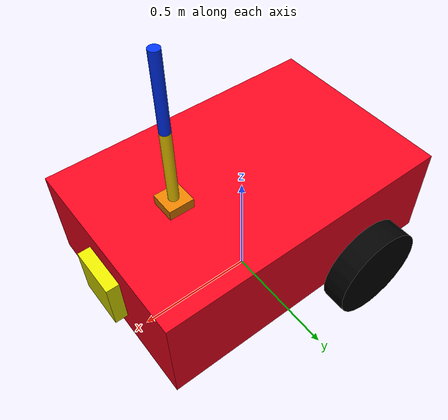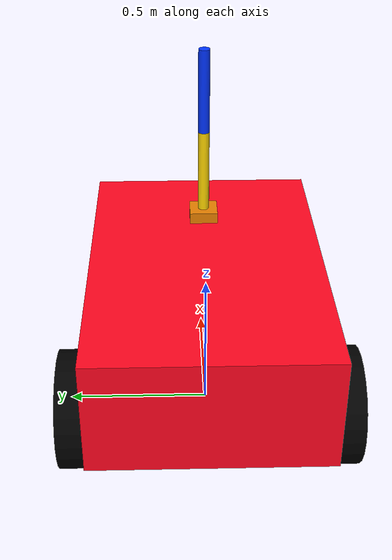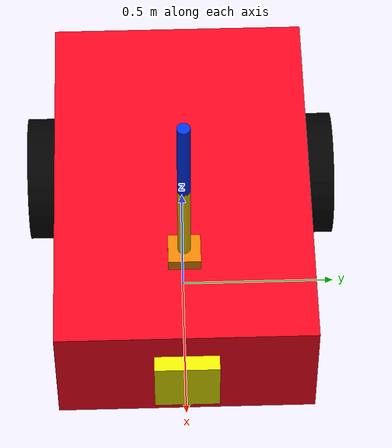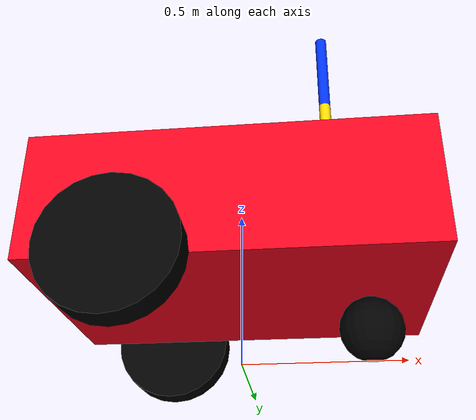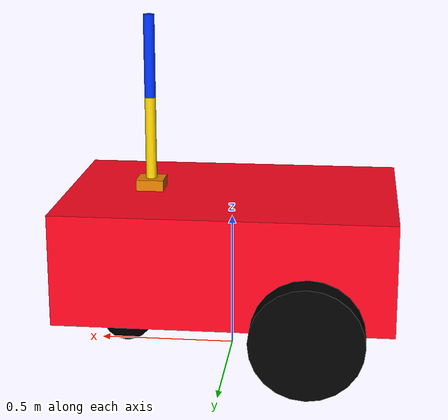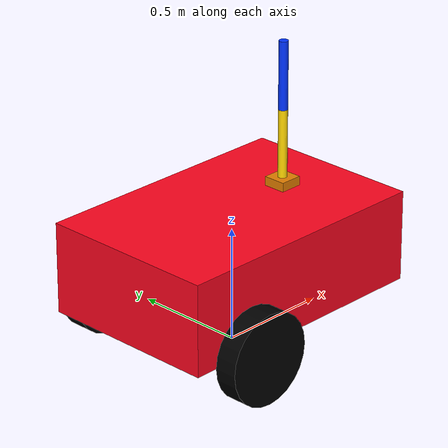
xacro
<?xml version="1.0"?>
<robot name="Red_Cherry_Bot" xmlns:xacro="http://www.ros.org/wiki/xacro">

<xacro:include filename="common_properties.xacro"/>
<xacro:include filename="mobile_base.xacro"/>
<xacro:include filename="mobile_base_gazebo.xacro"/>
<xacro:include filename="camera.xacro"/>
<xacro:include filename="arm.xacro"/>
<xacro:include filename="arm_gazebo.xacro"/>

</robot>

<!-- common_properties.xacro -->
<robot xmlns:xacro="http://www.ros.org/wiki/xacro">

    <!-- Gazebo-friendly material palette -->
    <material name="base_cherry_red">
        <color rgba="1.0 0.02 0.12 1.0" />
    </material>

    <material name="wheel_black">
        <color rgba="0.0 0.0 0.0 1.0"/>
    </material>

    <material name="camera_yellow">
        <color rgba="0.9 0.9 0.0 1.0"/>
    </material>

    <material name="base_orange">
        <color rgba="0.9 0.5 0.0 1.0"/>
    </material>

    <material name="golden_yellow">
        <color rgba="1.0 0.84 0.0 1.0"/>
    </material>

    <material name="red">
        <color rgba="1.0 0.0 0.0 1.0"/>
    </material>

    <material name="elbow_blue">
        <color rgba="0.0 0.2 1.0 1.0"/>
    </material>

    <xacro:macro name="box_inertia" params="m x y z o_xyz o_rpy">
        <inertial>
               <mass value="${m}"/>
               <origin xyz="${o_xyz}" rpy="${o_rpy}"/>
               <inertia
                    ixx="${ (m/12.0) * (y*y + z*z) }" ixy="0" ixz="0"
                    iyy="${ (m/12.0) * (x*x + z*z) }" iyz="0"
                    izz="${ (m/12.0) * (x*x + y*y) }"/>
        </inertial>
    </xacro:macro>

    <xacro:macro name="cylinder_inertia" params="m r l o_xyz o_rpy">
        <inertial>
            <mass value="${m}"/>
            <origin xyz="${o_xyz}" rpy="${o_rpy}"/>
            <inertia
                ixx="${ (m/12.0) * (3.0*r*r + l*l) }" ixy="0" ixz="0"
                iyy="${ (m/12.0) * (3.0*r*r + l*l) }" iyz="0"
                izz="${ (m/2.0) * (r*r) }" />
        </inertial>
    </xacro:macro>

    <xacro:macro name="sphere_inertia" params="m r o_xyz o_rpy">
        <inertial>
            <mass value="${m}"/>
            <origin xyz="${o_xyz}" rpy="${o_rpy}"/>
            <inertia
                ixx="${ (2.0/5.0) * m * r * r }" ixy="0" ixz="0"
                iyy="${ (2.0/5.0) * m * r * r }" iyz="0"
                izz="${ (2.0/5.0) * m * r * r }" />
        </inertial>
    </xacro:macro>

</robot>

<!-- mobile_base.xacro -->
<robot xmlns:xacro="http://www.ros.org/wiki/xacro">

    <xacro:property name="base_length" value="1.2"/>
    <xacro:property name="base_width" value="0.8"/>
    <xacro:property name="base_height" value="0.4"/>
    <xacro:property name="wheel_radius" value="0.2"/>
    <xacro:property name="wheel_length" value="0.1"/>

  <link name="base_link">
    <visual>
      <geometry>
        <box size="${base_length} ${base_width} ${base_height}"/>
      </geometry>
      <origin xyz="0 0 ${base_height/2.0}" rpy="0 0 0"/>
      <material name="base_cherry_red"/>
    </visual>

    <collision>
      <geometry>
        <box size="${base_length} ${base_width} ${base_height}"/>
      </geometry>
      <origin xyz="0 0 ${base_height/2.0}" rpy="0 0 0"/>
    </collision>

    <xacro:box_inertia m="10" x="${base_length}" y="${base_width}" z="${base_height}" o_xyz="0 0 ${base_height/2.0}" o_rpy="0 0 0"/>
    <!-- mass is in KG, so put realistic values though its Simulation. Here its 10Kg -->
  </link>

  <!-- Creating macros for 2 wheels, but before creating a macro think once it makes sense or not to make a macro for it ! Dont Overoptimize and dont create unnecessary complexity ! -->
  <xacro:macro name="wheel_link" params="prefix">
    <link name="${prefix}_wheel_link">
      <visual>
            <geometry>
                <cylinder radius="${wheel_radius}" length="${wheel_length}"/>
            </geometry>
            <origin xyz="0 0 0" rpy="${pi/2} 0 0"/>
            <material name="wheel_black"/>
      </visual>

      <collision>
            <geometry>
            <!-- We are not choosing Cylinder for collision as it needs Gazebo to track multiple points of contact which may not make the robot work the intended way. So choosing S-->
                <sphere radius="${wheel_radius}"/>
                <origin xyz="0 0 0" rpy="0 0 0"/>
            </geometry>
            <origin xyz="0 0 0" rpy="0 0 0"/>
      </collision>

      <xacro:cylinder_inertia m="2.0" r="${wheel_radius}" l="${wheel_length}" o_xyz="0 0 0" o_rpy="${pi/2} 0 0"/>
    </link>
  </xacro:macro>

  <xacro:wheel_link prefix="right"/>
  <xacro:wheel_link prefix="left"/>

  <link name="caster_wheel_link">
    <visual>
      <geometry>
        <sphere radius="${wheel_radius/2.0}"/>
      </geometry>
      <origin xyz="0 0 0" rpy="0 0 0"/>
      <material name="wheel_black"/>
    </visual>

    <collision>
      <geometry>
        <sphere radius="${wheel_radius/2.0}"/>
      </geometry>
      <origin xyz="0 0 0" rpy="0 0 0"/>
    </collision>

    <xacro:sphere_inertia m="1.0" r="${wheel_radius/2.0}" o_xyz="0 0 0" o_rpy="0 0 0"/>
  </link>

  <link name="base_footprint_link">
    <!--No visual, or inertia-->
  </link>

<joint name="base_joint" type="fixed">
  <parent link="base_footprint_link"/>
  <child link="base_link"/>
  <origin xyz="0 0 ${wheel_radius}" rpy="0 0 0"/>
</joint>

  <joint name="base_right_wheel_joint" type="continuous">
    <parent link="base_link"/>
    <child link="right_wheel_link"/>
    <origin xyz="-${base_length/4.0} -${base_width/2.0 + wheel_length/2.0} 0" rpy="0 0 0"/>
    <axis xyz="0 1 0"/>
  </joint>

  <joint name="base_left_wheel_joint" type="continuous">
    <parent link="base_link"/>
    <child link="left_wheel_link"/>
    <origin xyz="-${base_length/4.0} ${base_width/2.0 + wheel_length/2.0} 0" rpy="0 0 0"/>
    <axis xyz="0 1 0"/>
  </joint>

<joint name="base_caster_wheel_joint" type="fixed">
    <parent link="base_link"/>
    <child link="caster_wheel_link"/>
    <origin xyz="${base_length/3.0} 0 -${wheel_radius/2.0}" rpy="0 0 0"/>
  </joint>

</robot>

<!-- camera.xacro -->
<robot name="Red_Cherry_Bot" xmlns:xacro="http://www.ros.org/wiki/xacro">

    <xacro:property name="camera_length" value="0.05"/>
    <xacro:property name="camera_width" value="0.2"/>
    <xacro:property name="camera_height" value="0.2"/>

  <!-- File will be included in model.urdf.xacro, so will get access to all links, props and joints, materials-->

  <link name="camera_link">
    <visual>
      <geometry>
        <box size="${camera_length} ${camera_width} ${camera_height}"/>
      </geometry>
      <origin xyz="0 0 0" rpy="0 0 0"/>
      <material name="camera_yellow"/>
    </visual>

    <collision>
      <geometry>
        <box size="${camera_length} ${camera_width} ${camera_height}"/>
      </geometry>
      <origin xyz="0 0 0" rpy="0 0 0"/>
    </collision>

    <xacro:box_inertia m="1" x="${camera_length}" y="${camera_width}" z="${camera_height}" o_xyz="0 0 0" o_rpy="0 0 0"/>
    <!-- mass is in KG, so put realistic values though its Simulation. Here its 10Kg -->
  </link>

  <joint name="base_camera_joint" type="fixed">
    <parent link="base_link"/>
    <child link="camera_link"/>
    <origin xyz="${(base_length + camera_length)/2.0} 0 ${base_height/2.0}" rpy="0 0 0"/>
  </joint>

  <!-- Virtual Link for OpenCV integration -->
  <link name="camera_link_optical" />

  <joint name="camera_optical_joint" type="fixed">
    <parent link="camera_link"/>
    <child link="camera_link_optical"/>
    <origin xyz="0 0 0" rpy="${-pi/2.0} 0 ${-pi/2.0}"/>
  </joint>

  <gazebo reference="camera_link">
    <sensor name="front_camera_sensor" type="camera">
      <camera>
        <horizontal_fov>1.3962634</horizontal_fov>
        <image>
          <width>640</width>
          <height>480</height>
          <format>R8G8B8</format>
        </image>
        <clip>
          <near>0.1</near>
          <far>15</far>
        </clip>
        <noise>
          <type>gaussian</type>
          <mean>0.0</mean>
          <stddev>0.007</stddev>
        </noise>
        <optical_frame_id>camera_link_optical</optical_frame_id>
        <!-- Camera information topic -->
        <camera_info_topic>camera/camera_info</camera_info_topic>
      </camera>
      <always_on>1</always_on>
      <update_rate>20</update_rate>
      <visualize>true</visualize>

      <!-- Sensor output topic -->
      <topic>camera/image_raw</topic>
    </sensor>
  </gazebo>

</robot>

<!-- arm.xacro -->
<robot name="Red_Cherry_Bot" xmlns:xacro="http://www.ros.org/wiki/xacro">

    <xacro:property name="arm_base_length" value="0.1"/>
    <xacro:property name="arm_base_width" value="0.1"/>
    <xacro:property name="arm_base_height" value="0.04"/>
    <xacro:property name="arm_base_mass" value="0.5"/>

    <xacro:property name="arm_radius" value="0.02"/>
    <xacro:property name="arm_height" value="0.3"/>
    <xacro:property name="arm_mass" value="0.3"/>

    <!-- File will be included in model.urdf.xacro, so will get access to all links, props and joints, materials-->
    <link name="arm_base_link">
        <visual>
            <geometry>
                <box size="${arm_base_length} ${arm_base_width} ${arm_base_height}"/>
            </geometry>
            <origin xyz="0 0 ${arm_base_height/2.0}" rpy="0 0 0"/>
            <material name="base_orange"/>
        </visual>

        <collision>
            <geometry>
                <box size="${arm_base_length} ${arm_base_width} ${arm_base_height}"/>
            </geometry>
            <origin xyz="0 0 ${arm_base_height/2.0}" rpy="0 0 0"/>
        </collision>

        <xacro:box_inertia m="${arm_base_mass}" x="${arm_base_length}" y="${arm_base_width}" z="${arm_base_height}" o_xyz="0 0 ${arm_base_height/2.0}" o_rpy="0 0 0"/>
    </link>

    <link name="forearm_link">
        <visual>
            <geometry>
                <cylinder radius="${arm_radius}" length="${arm_height}"/>
            </geometry>
            <origin xyz="0 0 ${arm_height/2.0}" rpy="0 0 0"/>
            <material name="golden_yellow"/>
        </visual>

        <collision>
            <geometry>
                <cylinder radius="${arm_radius}" length="${arm_height}"/>
            </geometry>
            <origin xyz="0 0 ${arm_height/2.0}" rpy="0 0 0"/>
        </collision>

        <xacro:cylinder_inertia m="${arm_mass}" r="${arm_radius}" l="${arm_height}" o_xyz="0 0 ${arm_height/2.0}" o_rpy="0 0 0"/>

    </link>

    <link name="elbow_link">
        <visual>
            <geometry>
                <cylinder radius="${arm_radius}" length="${arm_height}"/>
            </geometry>
            <origin xyz="0 0 ${arm_height/2.0}" rpy="0 0 0"/>
            <material name="elbow_blue"/>
        </visual>

        <collision>
            <geometry>
                <cylinder radius="${arm_radius}" length="${arm_height}"/>
            </geometry>
            <origin xyz="0 0 ${arm_height/2.0}" rpy="0 0 0"/>
        </collision>

        <xacro:cylinder_inertia m="${arm_mass}" r="${arm_radius}" l="${arm_height}" o_xyz="0 0 ${arm_height/2.0}" o_rpy="0 0 0"/>
    </link>

    <!-- Joints -->
    <joint name="arm_base_joint" type="fixed">
        <parent link="base_link"/>
        <child link="arm_base_link"/>
        <origin xyz="${base_length/4.0} 0 ${base_height}" rpy="0 0 0"/>
    </joint>

    <joint name="forearm_joint" type="revolute">
        <parent link="arm_base_link"/>
        <child link="forearm_link"/>
        <origin xyz="0 0 ${arm_base_height}" rpy="0 0 0"/>
        <axis xyz="0 1 0"/>
        <limit effort="100" velocity="100" lower="0" upper="1.57"/>
        <dynamics damping="0.3" friction="0.3"/>
    </joint>

    <joint name="elbow_joint" type="revolute">
        <parent link="forearm_link"/>
        <child link="elbow_link"/>
        <origin xyz="0 0 ${arm_height}" rpy="0 0 0"/>
        <axis xyz="0 1 0"/>
        <limit effort="100" velocity="100" lower="0" upper="1.57"/>
        <dynamics damping="0.3" friction="0.3"/>
    </joint>

</robot>
